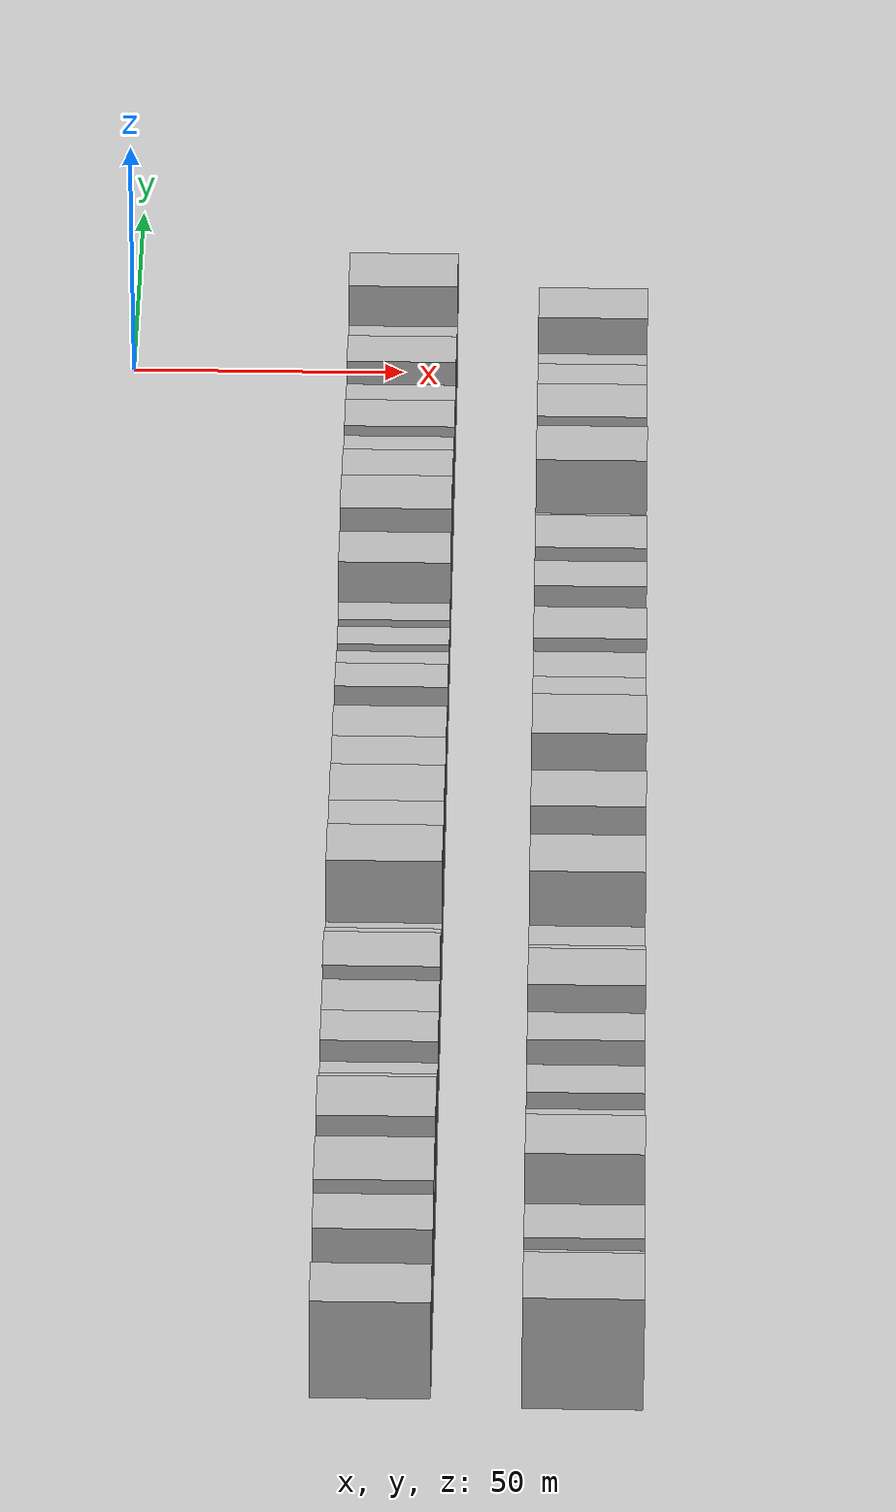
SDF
<sdf version="1.6">
 <world name="default">
  <model name="building_1">
   <static>1</static>
   <pose>50.0000 -283.1126 0 0.000000 0.000000 0.000000</pose>
   <link name="link">
    <pose>0 0 10.50 0 0 0</pose>
    <collision name="collision"><geometry><box><size>20.0000 9.7748 21.0000</size></box></geometry></collision>
    <visual name="visual">
     <cast_shadows>0</cast_shadows>
     <geometry><box><size>20.0000 9.7748 21.0000</size></box></geometry>
     <material>
      <script>
       <uri>model://HANNAS_wall/materials/scripts</uri>
       <uri>model://HANNAS_wall/materials/textures</uri>
       <name>vrc/HANNAS_wall</name>
      </script>
     </material>
    </visual>
   </link>
  </model>
  <model name="building_2">
   <static>1</static>
   <pose>50.0000 -274.9102 0 0.000000 0.000000 0.000000</pose>
   <link name="link">
    <pose>0 0 7.50 0 0 0</pose>
    <collision name="collision"><geometry><box><size>20.0000 6.6300 15.0000</size></box></geometry></collision>
    <visual name="visual">
     <cast_shadows>0</cast_shadows>
     <geometry><box><size>20.0000 6.6300 15.0000</size></box></geometry>
     <material>
      <script>
       <uri>model://HANNAS_wall/materials/scripts</uri>
       <uri>model://HANNAS_wall/materials/textures</uri>
       <name>vrc/HANNAS_wall</name>
      </script>
     </material>
    </visual>
   </link>
  </model>
  <model name="building_3">
   <static>1</static>
   <pose>50.0000 -265.1083 0 0.000000 0.000000 0.000000</pose>
   <link name="link">
    <pose>0 0 10.50 0 0 0</pose>
    <collision name="collision"><geometry><box><size>20.0000 8.9737 21.0000</size></box></geometry></collision>
    <visual name="visual">
     <cast_shadows>0</cast_shadows>
     <geometry><box><size>20.0000 8.9737 21.0000</size></box></geometry>
     <material>
      <script>
       <uri>model://HANNAS_wall/materials/scripts</uri>
       <uri>model://HANNAS_wall/materials/textures</uri>
       <name>vrc/HANNAS_wall</name>
      </script>
     </material>
    </visual>
   </link>
  </model>
  <model name="building_4">
   <static>1</static>
   <pose>50.0000 -254.9887 0 0.000000 0.000000 0.000000</pose>
   <link name="link">
    <pose>0 0 12.00 0 0 0</pose>
    <collision name="collision"><geometry><box><size>20.0000 11.2656 24.0000</size></box></geometry></collision>
    <visual name="visual">
     <cast_shadows>0</cast_shadows>
     <geometry><box><size>20.0000 11.2656 24.0000</size></box></geometry>
     <material>
      <script>
       <uri>model://HANNAS_wall/materials/scripts</uri>
       <uri>model://HANNAS_wall/materials/textures</uri>
       <name>vrc/HANNAS_wall</name>
      </script>
     </material>
    </visual>
   </link>
  </model>
  <model name="building_5">
   <static>1</static>
   <pose>50.0000 -246.7155 0 0.000000 0.000000 0.000000</pose>
   <link name="link">
    <pose>0 0 6.00 0 0 0</pose>
    <collision name="collision"><geometry><box><size>20.0000 5.2808 12.0000</size></box></geometry></collision>
    <visual name="visual">
     <cast_shadows>0</cast_shadows>
     <geometry><box><size>20.0000 5.2808 12.0000</size></box></geometry>
     <material>
      <script>
       <uri>model://HANNAS_wall/materials/scripts</uri>
       <uri>model://HANNAS_wall/materials/textures</uri>
       <name>vrc/HANNAS_wall</name>
      </script>
     </material>
    </visual>
   </link>
  </model>
  <model name="building_6">
   <static>1</static>
   <pose>50.0000 -238.8820 0 0.000000 0.000000 0.000000</pose>
   <link name="link">
    <pose>0 0 12.00 0 0 0</pose>
    <collision name="collision"><geometry><box><size>20.0000 10.3863 24.0000</size></box></geometry></collision>
    <visual name="visual">
     <cast_shadows>0</cast_shadows>
     <geometry><box><size>20.0000 10.3863 24.0000</size></box></geometry>
     <material>
      <script>
       <uri>model://HANNAS_wall/materials/scripts</uri>
       <uri>model://HANNAS_wall/materials/textures</uri>
       <name>vrc/HANNAS_wall</name>
      </script>
     </material>
    </visual>
   </link>
  </model>
  <model name="building_7">
   <static>1</static>
   <pose>50.0000 -229.6808 0 0.000000 0.000000 0.000000</pose>
   <link name="link">
    <pose>0 0 9.00 0 0 0</pose>
    <collision name="collision"><geometry><box><size>20.0000 8.0159 18.0000</size></box></geometry></collision>
    <visual name="visual">
     <cast_shadows>0</cast_shadows>
     <geometry><box><size>20.0000 8.0159 18.0000</size></box></geometry>
     <material>
      <script>
       <uri>model://HANNAS_wall/materials/scripts</uri>
       <uri>model://HANNAS_wall/materials/textures</uri>
       <name>vrc/HANNAS_wall</name>
      </script>
     </material>
    </visual>
   </link>
  </model>
  <model name="building_8">
   <static>1</static>
   <pose>50.0000 -222.3984 0 0.000000 0.000000 0.000000</pose>
   <link name="link">
    <pose>0 0 7.50 0 0 0</pose>
    <collision name="collision"><geometry><box><size>20.0000 6.5489 15.0000</size></box></geometry></collision>
    <visual name="visual">
     <cast_shadows>0</cast_shadows>
     <geometry><box><size>20.0000 6.5489 15.0000</size></box></geometry>
     <material>
      <script>
       <uri>model://HANNAS_wall/materials/scripts</uri>
       <uri>model://HANNAS_wall/materials/textures</uri>
       <name>vrc/HANNAS_wall</name>
      </script>
     </material>
    </visual>
   </link>
  </model>
  <model name="building_9">
   <static>1</static>
   <pose>50.0000 -213.1041 0 0.000000 0.000000 0.000000</pose>
   <link name="link">
    <pose>0 0 9.00 0 0 0</pose>
    <collision name="collision"><geometry><box><size>20.0000 8.0398 18.0000</size></box></geometry></collision>
    <visual name="visual">
     <cast_shadows>0</cast_shadows>
     <geometry><box><size>20.0000 8.0398 18.0000</size></box></geometry>
     <material>
      <script>
       <uri>model://HANNAS_wall/materials/scripts</uri>
       <uri>model://HANNAS_wall/materials/textures</uri>
       <name>vrc/HANNAS_wall</name>
      </script>
     </material>
    </visual>
   </link>
  </model>
  <model name="building_10">
   <static>1</static>
   <pose>50.0000 -204.9203 0 0.000000 0.000000 0.000000</pose>
   <link name="link">
    <pose>0 0 9.00 0 0 0</pose>
    <collision name="collision"><geometry><box><size>20.0000 8.3279 18.0000</size></box></geometry></collision>
    <visual name="visual">
     <cast_shadows>0</cast_shadows>
     <geometry><box><size>20.0000 8.3279 18.0000</size></box></geometry>
     <material>
      <script>
       <uri>model://HANNAS_wall/materials/scripts</uri>
       <uri>model://HANNAS_wall/materials/textures</uri>
       <name>vrc/HANNAS_wall</name>
      </script>
     </material>
    </visual>
   </link>
  </model>
  <model name="building_11">
   <static>1</static>
   <pose>50.0000 -196.1393 0 0.000000 0.000000 0.000000</pose>
   <link name="link">
    <pose>0 0 10.50 0 0 0</pose>
    <collision name="collision"><geometry><box><size>20.0000 9.2340 21.0000</size></box></geometry></collision>
    <visual name="visual">
     <cast_shadows>0</cast_shadows>
     <geometry><box><size>20.0000 9.2340 21.0000</size></box></geometry>
     <material>
      <script>
       <uri>model://HANNAS_wall/materials/scripts</uri>
       <uri>model://HANNAS_wall/materials/textures</uri>
       <name>vrc/HANNAS_wall</name>
      </script>
     </material>
    </visual>
   </link>
  </model>
  <model name="building_12">
   <static>1</static>
   <pose>50.0000 -186.2791 0 0.000000 0.000000 0.000000</pose>
   <link name="link">
    <pose>0 0 7.50 0 0 0</pose>
    <collision name="collision"><geometry><box><size>20.0000 6.4864 15.0000</size></box></geometry></collision>
    <visual name="visual">
     <cast_shadows>0</cast_shadows>
     <geometry><box><size>20.0000 6.4864 15.0000</size></box></geometry>
     <material>
      <script>
       <uri>model://HANNAS_wall/materials/scripts</uri>
       <uri>model://HANNAS_wall/materials/textures</uri>
       <name>vrc/HANNAS_wall</name>
      </script>
     </material>
    </visual>
   </link>
  </model>
  <model name="building_13">
   <static>1</static>
   <pose>50.0000 -180.4282 0 0.000000 0.000000 0.000000</pose>
   <link name="link">
    <pose>0 0 6.00 0 0 0</pose>
    <collision name="collision"><geometry><box><size>20.0000 5.2154 12.0000</size></box></geometry></collision>
    <visual name="visual">
     <cast_shadows>0</cast_shadows>
     <geometry><box><size>20.0000 5.2154 12.0000</size></box></geometry>
     <material>
      <script>
       <uri>model://HANNAS_wall/materials/scripts</uri>
       <uri>model://HANNAS_wall/materials/textures</uri>
       <name>vrc/HANNAS_wall</name>
      </script>
     </material>
    </visual>
   </link>
  </model>
  <model name="building_14">
   <static>1</static>
   <pose>50.0000 -170.7632 0 0.000000 0.000000 0.000000</pose>
   <link name="link">
    <pose>0 0 12.00 0 0 0</pose>
    <collision name="collision"><geometry><box><size>20.0000 10.1147 24.0000</size></box></geometry></collision>
    <visual name="visual">
     <cast_shadows>0</cast_shadows>
     <geometry><box><size>20.0000 10.1147 24.0000</size></box></geometry>
     <material>
      <script>
       <uri>model://HANNAS_wall/materials/scripts</uri>
       <uri>model://HANNAS_wall/materials/textures</uri>
       <name>vrc/HANNAS_wall</name>
      </script>
     </material>
    </visual>
   </link>
  </model>
  <model name="building_15">
   <static>1</static>
   <pose>50.0000 -160.4710 0 0.000000 0.000000 0.000000</pose>
   <link name="link">
    <pose>0 0 10.50 0 0 0</pose>
    <collision name="collision"><geometry><box><size>20.0000 10.4697 21.0000</size></box></geometry></collision>
    <visual name="visual">
     <cast_shadows>0</cast_shadows>
     <geometry><box><size>20.0000 10.4697 21.0000</size></box></geometry>
     <material>
      <script>
       <uri>model://HANNAS_wall/materials/scripts</uri>
       <uri>model://HANNAS_wall/materials/textures</uri>
       <name>vrc/HANNAS_wall</name>
      </script>
     </material>
    </visual>
   </link>
  </model>
  <model name="building_16">
   <static>1</static>
   <pose>50.0000 -150.1489 0 0.000000 0.000000 0.000000</pose>
   <link name="link">
    <pose>0 0 10.50 0 0 0</pose>
    <collision name="collision"><geometry><box><size>20.0000 10.1744 21.0000</size></box></geometry></collision>
    <visual name="visual">
     <cast_shadows>0</cast_shadows>
     <geometry><box><size>20.0000 10.1744 21.0000</size></box></geometry>
     <material>
      <script>
       <uri>model://HANNAS_wall/materials/scripts</uri>
       <uri>model://HANNAS_wall/materials/textures</uri>
       <name>vrc/HANNAS_wall</name>
      </script>
     </material>
    </visual>
   </link>
  </model>
  <model name="building_17">
   <static>1</static>
   <pose>50.0000 -137.6509 0 0.000000 0.000000 0.000000</pose>
   <link name="link">
    <pose>0 0 9.00 0 0 0</pose>
    <collision name="collision"><geometry><box><size>20.0000 8.8214 18.0000</size></box></geometry></collision>
    <visual name="visual">
     <cast_shadows>0</cast_shadows>
     <geometry><box><size>20.0000 8.8214 18.0000</size></box></geometry>
     <material>
      <script>
       <uri>model://HANNAS_wall/materials/scripts</uri>
       <uri>model://HANNAS_wall/materials/textures</uri>
       <name>vrc/HANNAS_wall</name>
      </script>
     </material>
    </visual>
   </link>
  </model>
  <model name="building_18">
   <static>1</static>
   <pose>50.0000 -128.8760 0 0.000000 0.000000 0.000000</pose>
   <link name="link">
    <pose>0 0 9.00 0 0 0</pose>
    <collision name="collision"><geometry><box><size>20.0000 8.7284 18.0000</size></box></geometry></collision>
    <visual name="visual">
     <cast_shadows>0</cast_shadows>
     <geometry><box><size>20.0000 8.7284 18.0000</size></box></geometry>
     <material>
      <script>
       <uri>model://HANNAS_wall/materials/scripts</uri>
       <uri>model://HANNAS_wall/materials/textures</uri>
       <name>vrc/HANNAS_wall</name>
      </script>
     </material>
    </visual>
   </link>
  </model>
  <model name="building_19">
   <static>1</static>
   <pose>50.0000 -119.8155 0 0.000000 0.000000 0.000000</pose>
   <link name="link">
    <pose>0 0 6.00 0 0 0</pose>
    <collision name="collision"><geometry><box><size>20.0000 5.3927 12.0000</size></box></geometry></collision>
    <visual name="visual">
     <cast_shadows>0</cast_shadows>
     <geometry><box><size>20.0000 5.3927 12.0000</size></box></geometry>
     <material>
      <script>
       <uri>model://HANNAS_wall/materials/scripts</uri>
       <uri>model://HANNAS_wall/materials/textures</uri>
       <name>vrc/HANNAS_wall</name>
      </script>
     </material>
    </visual>
   </link>
  </model>
  <model name="building_20">
   <static>1</static>
   <pose>50.0000 -111.7386 0 0.000000 0.000000 0.000000</pose>
   <link name="link">
    <pose>0 0 7.50 0 0 0</pose>
    <collision name="collision"><geometry><box><size>20.0000 6.7611 15.0000</size></box></geometry></collision>
    <visual name="visual">
     <cast_shadows>0</cast_shadows>
     <geometry><box><size>20.0000 6.7611 15.0000</size></box></geometry>
     <material>
      <script>
       <uri>model://HANNAS_wall/materials/scripts</uri>
       <uri>model://HANNAS_wall/materials/textures</uri>
       <name>vrc/HANNAS_wall</name>
      </script>
     </material>
    </visual>
   </link>
  </model>
  <model name="building_21">
   <static>1</static>
   <pose>50.0000 -103.6597 0 0.000000 0.000000 0.000000</pose>
   <link name="link">
    <pose>0 0 6.00 0 0 0</pose>
    <collision name="collision"><geometry><box><size>20.0000 5.3967 12.0000</size></box></geometry></collision>
    <visual name="visual">
     <cast_shadows>0</cast_shadows>
     <geometry><box><size>20.0000 5.3967 12.0000</size></box></geometry>
     <material>
      <script>
       <uri>model://HANNAS_wall/materials/scripts</uri>
       <uri>model://HANNAS_wall/materials/textures</uri>
       <name>vrc/HANNAS_wall</name>
      </script>
     </material>
    </visual>
   </link>
  </model>
  <model name="building_22">
   <static>1</static>
   <pose>50.0000 -96.3648 0 0.000000 0.000000 0.000000</pose>
   <link name="link">
    <pose>0 0 6.00 0 0 0</pose>
    <collision name="collision"><geometry><box><size>20.0000 5.1931 12.0000</size></box></geometry></collision>
    <visual name="visual">
     <cast_shadows>0</cast_shadows>
     <geometry><box><size>20.0000 5.1931 12.0000</size></box></geometry>
     <material>
      <script>
       <uri>model://HANNAS_wall/materials/scripts</uri>
       <uri>model://HANNAS_wall/materials/textures</uri>
       <name>vrc/HANNAS_wall</name>
      </script>
     </material>
    </visual>
   </link>
  </model>
  <model name="building_23">
   <static>1</static>
   <pose>50.0000 -89.1910 0 0.000000 0.000000 0.000000</pose>
   <link name="link">
    <pose>0 0 6.00 0 0 0</pose>
    <collision name="collision"><geometry><box><size>20.0000 5.1546 12.0000</size></box></geometry></collision>
    <visual name="visual">
     <cast_shadows>0</cast_shadows>
     <geometry><box><size>20.0000 5.1546 12.0000</size></box></geometry>
     <material>
      <script>
       <uri>model://HANNAS_wall/materials/scripts</uri>
       <uri>model://HANNAS_wall/materials/textures</uri>
       <name>vrc/HANNAS_wall</name>
      </script>
     </material>
    </visual>
   </link>
  </model>
  <model name="building_24">
   <static>1</static>
   <pose>50.0000 -82.0602 0 0.000000 0.000000 0.000000</pose>
   <link name="link">
    <pose>0 0 10.50 0 0 0</pose>
    <collision name="collision"><geometry><box><size>20.0000 9.1070 21.0000</size></box></geometry></collision>
    <visual name="visual">
     <cast_shadows>0</cast_shadows>
     <geometry><box><size>20.0000 9.1070 21.0000</size></box></geometry>
     <material>
      <script>
       <uri>model://HANNAS_wall/materials/scripts</uri>
       <uri>model://HANNAS_wall/materials/textures</uri>
       <name>vrc/HANNAS_wall</name>
      </script>
     </material>
    </visual>
   </link>
  </model>
  <model name="building_25">
   <static>1</static>
   <pose>50.0000 -69.5105 0 0.000000 0.000000 0.000000</pose>
   <link name="link">
    <pose>0 0 12.00 0 0 0</pose>
    <collision name="collision"><geometry><box><size>20.0000 9.9925 24.0000</size></box></geometry></collision>
    <visual name="visual">
     <cast_shadows>0</cast_shadows>
     <geometry><box><size>20.0000 9.9925 24.0000</size></box></geometry>
     <material>
      <script>
       <uri>model://HANNAS_wall/materials/scripts</uri>
       <uri>model://HANNAS_wall/materials/textures</uri>
       <name>vrc/HANNAS_wall</name>
      </script>
     </material>
    </visual>
   </link>
  </model>
  <model name="building_26">
   <static>1</static>
   <pose>50.0000 -57.0944 0 0.000000 0.000000 0.000000</pose>
   <link name="link">
    <pose>0 0 10.50 0 0 0</pose>
    <collision name="collision"><geometry><box><size>20.0000 8.8398 21.0000</size></box></geometry></collision>
    <visual name="visual">
     <cast_shadows>0</cast_shadows>
     <geometry><box><size>20.0000 8.8398 21.0000</size></box></geometry>
     <material>
      <script>
       <uri>model://HANNAS_wall/materials/scripts</uri>
       <uri>model://HANNAS_wall/materials/textures</uri>
       <name>vrc/HANNAS_wall</name>
      </script>
     </material>
    </visual>
   </link>
  </model>
  <model name="building_27">
   <static>1</static>
   <pose>50.0000 -48.5815 0 0.000000 0.000000 0.000000</pose>
   <link name="link">
    <pose>0 0 9.00 0 0 0</pose>
    <collision name="collision"><geometry><box><size>20.0000 8.1859 18.0000</size></box></geometry></collision>
    <visual name="visual">
     <cast_shadows>0</cast_shadows>
     <geometry><box><size>20.0000 8.1859 18.0000</size></box></geometry>
     <material>
      <script>
       <uri>model://HANNAS_wall/materials/scripts</uri>
       <uri>model://HANNAS_wall/materials/textures</uri>
       <name>vrc/HANNAS_wall</name>
      </script>
     </material>
    </visual>
   </link>
  </model>
  <model name="building_28">
   <static>1</static>
   <pose>50.0000 -37.4113 0 0.000000 0.000000 0.000000</pose>
   <link name="link">
    <pose>0 0 9.00 0 0 0</pose>
    <collision name="collision"><geometry><box><size>20.0000 8.1546 18.0000</size></box></geometry></collision>
    <visual name="visual">
     <cast_shadows>0</cast_shadows>
     <geometry><box><size>20.0000 8.1546 18.0000</size></box></geometry>
     <material>
      <script>
       <uri>model://HANNAS_wall/materials/scripts</uri>
       <uri>model://HANNAS_wall/materials/textures</uri>
       <name>vrc/HANNAS_wall</name>
      </script>
     </material>
    </visual>
   </link>
  </model>
  <model name="building_29">
   <static>1</static>
   <pose>50.0000 -27.9092 0 0.000000 0.000000 0.000000</pose>
   <link name="link">
    <pose>0 0 7.50 0 0 0</pose>
    <collision name="collision"><geometry><box><size>20.0000 6.8497 15.0000</size></box></geometry></collision>
    <visual name="visual">
     <cast_shadows>0</cast_shadows>
     <geometry><box><size>20.0000 6.8497 15.0000</size></box></geometry>
     <material>
      <script>
       <uri>model://HANNAS_wall/materials/scripts</uri>
       <uri>model://HANNAS_wall/materials/textures</uri>
       <name>vrc/HANNAS_wall</name>
      </script>
     </material>
    </visual>
   </link>
  </model>
  <model name="building_30">
   <static>1</static>
   <pose>50.0000 -17.4565 0 0.000000 0.000000 0.000000</pose>
   <link name="link">
    <pose>0 0 9.00 0 0 0</pose>
    <collision name="collision"><geometry><box><size>20.0000 8.0557 18.0000</size></box></geometry></collision>
    <visual name="visual">
     <cast_shadows>0</cast_shadows>
     <geometry><box><size>20.0000 8.0557 18.0000</size></box></geometry>
     <material>
      <script>
       <uri>model://HANNAS_wall/materials/scripts</uri>
       <uri>model://HANNAS_wall/materials/textures</uri>
       <name>vrc/HANNAS_wall</name>
      </script>
     </material>
    </visual>
   </link>
  </model>
  <model name="building_31">
   <static>1</static>
   <pose>50.0000 -9.7898 0 0.000000 0.000000 0.000000</pose>
   <link name="link">
    <pose>0 0 7.50 0 0 0</pose>
    <collision name="collision"><geometry><box><size>20.0000 7.2776 15.0000</size></box></geometry></collision>
    <visual name="visual">
     <cast_shadows>0</cast_shadows>
     <geometry><box><size>20.0000 7.2776 15.0000</size></box></geometry>
     <material>
      <script>
       <uri>model://HANNAS_wall/materials/scripts</uri>
       <uri>model://HANNAS_wall/materials/textures</uri>
       <name>vrc/HANNAS_wall</name>
      </script>
     </material>
    </visual>
   </link>
  </model>
  <model name="building_32">
   <static>1</static>
   <pose>50.0000 -0.8902 0 0.000000 0.000000 0.000000</pose>
   <link name="link">
    <pose>0 0 12.00 0 0 0</pose>
    <collision name="collision"><geometry><box><size>20.0000 10.5216 24.0000</size></box></geometry></collision>
    <visual name="visual">
     <cast_shadows>0</cast_shadows>
     <geometry><box><size>20.0000 10.5216 24.0000</size></box></geometry>
     <material>
      <script>
       <uri>model://HANNAS_wall/materials/scripts</uri>
       <uri>model://HANNAS_wall/materials/textures</uri>
       <name>vrc/HANNAS_wall</name>
      </script>
     </material>
    </visual>
   </link>
  </model>
  <model name="building_64">
   <static>1</static>
   <pose>85.0000 -284.1692 0 0.000000 0.000000 0.000000</pose>
   <link name="link">
    <pose>0 0 12.00 0 0 0</pose>
    <collision name="collision"><geometry><box><size>20.0000 11.6616 24.0000</size></box></geometry></collision>
    <visual name="visual">
     <cast_shadows>0</cast_shadows>
     <geometry><box><size>20.0000 11.6616 24.0000</size></box></geometry>
     <material>
      <script>
       <uri>model://HANNAS_wall/materials/scripts</uri>
       <uri>model://HANNAS_wall/materials/textures</uri>
       <name>vrc/HANNAS_wall</name>
      </script>
     </material>
    </visual>
   </link>
  </model>
  <model name="building_65">
   <static>1</static>
   <pose>85.0000 -274.5443 0 0.000000 0.000000 0.000000</pose>
   <link name="link">
    <pose>0 0 9.00 0 0 0</pose>
    <collision name="collision"><geometry><box><size>20.0000 7.5880 18.0000</size></box></geometry></collision>
    <visual name="visual">
     <cast_shadows>0</cast_shadows>
     <geometry><box><size>20.0000 7.5880 18.0000</size></box></geometry>
     <material>
      <script>
       <uri>model://HANNAS_wall/materials/scripts</uri>
       <uri>model://HANNAS_wall/materials/textures</uri>
       <name>vrc/HANNAS_wall</name>
      </script>
     </material>
    </visual>
   </link>
  </model>
  <model name="building_66">
   <static>1</static>
   <pose>85.0000 -263.4177 0 0.000000 0.000000 0.000000</pose>
   <link name="link">
    <pose>0 0 9.00 0 0 0</pose>
    <collision name="collision"><geometry><box><size>20.0000 8.6652 18.0000</size></box></geometry></collision>
    <visual name="visual">
     <cast_shadows>0</cast_shadows>
     <geometry><box><size>20.0000 8.6652 18.0000</size></box></geometry>
     <material>
      <script>
       <uri>model://HANNAS_wall/materials/scripts</uri>
       <uri>model://HANNAS_wall/materials/textures</uri>
       <name>vrc/HANNAS_wall</name>
      </script>
     </material>
    </visual>
   </link>
  </model>
  <model name="building_67">
   <static>1</static>
   <pose>85.0000 -256.1763 0 0.000000 0.000000 0.000000</pose>
   <link name="link">
    <pose>0 0 6.00 0 0 0</pose>
    <collision name="collision"><geometry><box><size>20.0000 5.8178 12.0000</size></box></geometry></collision>
    <visual name="visual">
     <cast_shadows>0</cast_shadows>
     <geometry><box><size>20.0000 5.8178 12.0000</size></box></geometry>
     <material>
      <script>
       <uri>model://HANNAS_wall/materials/scripts</uri>
       <uri>model://HANNAS_wall/materials/textures</uri>
       <name>vrc/HANNAS_wall</name>
      </script>
     </material>
    </visual>
   </link>
  </model>
  <model name="building_68">
   <static>1</static>
   <pose>85.0000 -248.1653 0 0.000000 0.000000 0.000000</pose>
   <link name="link">
    <pose>0 0 12.00 0 0 0</pose>
    <collision name="collision"><geometry><box><size>20.0000 10.2042 24.0000</size></box></geometry></collision>
    <visual name="visual">
     <cast_shadows>0</cast_shadows>
     <geometry><box><size>20.0000 10.2042 24.0000</size></box></geometry>
     <material>
      <script>
       <uri>model://HANNAS_wall/materials/scripts</uri>
       <uri>model://HANNAS_wall/materials/textures</uri>
       <name>vrc/HANNAS_wall</name>
      </script>
     </material>
    </visual>
   </link>
  </model>
  <model name="building_69">
   <static>1</static>
   <pose>85.0000 -238.7652 0 0.000000 0.000000 0.000000</pose>
   <link name="link">
    <pose>0 0 9.00 0 0 0</pose>
    <collision name="collision"><geometry><box><size>20.0000 8.5960 18.0000</size></box></geometry></collision>
    <visual name="visual">
     <cast_shadows>0</cast_shadows>
     <geometry><box><size>20.0000 8.5960 18.0000</size></box></geometry>
     <material>
      <script>
       <uri>model://HANNAS_wall/materials/scripts</uri>
       <uri>model://HANNAS_wall/materials/textures</uri>
       <name>vrc/HANNAS_wall</name>
      </script>
     </material>
    </visual>
   </link>
  </model>
  <model name="building_70">
   <static>1</static>
   <pose>85.0000 -232.0190 0 0.000000 0.000000 0.000000</pose>
   <link name="link">
    <pose>0 0 6.00 0 0 0</pose>
    <collision name="collision"><geometry><box><size>20.0000 4.8965 12.0000</size></box></geometry></collision>
    <visual name="visual">
     <cast_shadows>0</cast_shadows>
     <geometry><box><size>20.0000 4.8965 12.0000</size></box></geometry>
     <material>
      <script>
       <uri>model://HANNAS_wall/materials/scripts</uri>
       <uri>model://HANNAS_wall/materials/textures</uri>
       <name>vrc/HANNAS_wall</name>
      </script>
     </material>
    </visual>
   </link>
  </model>
  <model name="building_71">
   <static>1</static>
   <pose>85.0000 -222.8958 0 0.000000 0.000000 0.000000</pose>
   <link name="link">
    <pose>0 0 7.50 0 0 0</pose>
    <collision name="collision"><geometry><box><size>20.0000 7.3498 15.0000</size></box></geometry></collision>
    <visual name="visual">
     <cast_shadows>0</cast_shadows>
     <geometry><box><size>20.0000 7.3498 15.0000</size></box></geometry>
     <material>
      <script>
       <uri>model://HANNAS_wall/materials/scripts</uri>
       <uri>model://HANNAS_wall/materials/textures</uri>
       <name>vrc/HANNAS_wall</name>
      </script>
     </material>
    </visual>
   </link>
  </model>
  <model name="building_72">
   <static>1</static>
   <pose>85.0000 -212.5471 0 0.000000 0.000000 0.000000</pose>
   <link name="link">
    <pose>0 0 9.00 0 0 0</pose>
    <collision name="collision"><geometry><box><size>20.0000 7.3475 18.0000</size></box></geometry></collision>
    <visual name="visual">
     <cast_shadows>0</cast_shadows>
     <geometry><box><size>20.0000 7.3475 18.0000</size></box></geometry>
     <material>
      <script>
       <uri>model://HANNAS_wall/materials/scripts</uri>
       <uri>model://HANNAS_wall/materials/textures</uri>
       <name>vrc/HANNAS_wall</name>
      </script>
     </material>
    </visual>
   </link>
  </model>
  <model name="building_73">
   <static>1</static>
   <pose>85.0000 -203.9569 0 0.000000 0.000000 0.000000</pose>
   <link name="link">
    <pose>0 0 12.00 0 0 0</pose>
    <collision name="collision"><geometry><box><size>20.0000 9.8329 24.0000</size></box></geometry></collision>
    <visual name="visual">
     <cast_shadows>0</cast_shadows>
     <geometry><box><size>20.0000 9.8329 24.0000</size></box></geometry>
     <material>
      <script>
       <uri>model://HANNAS_wall/materials/scripts</uri>
       <uri>model://HANNAS_wall/materials/textures</uri>
       <name>vrc/HANNAS_wall</name>
      </script>
     </material>
    </visual>
   </link>
  </model>
  <model name="building_74">
   <static>1</static>
   <pose>85.0000 -194.9066 0 0.000000 0.000000 0.000000</pose>
   <link name="link">
    <pose>0 0 9.00 0 0 0</pose>
    <collision name="collision"><geometry><box><size>20.0000 8.2678 18.0000</size></box></geometry></collision>
    <visual name="visual">
     <cast_shadows>0</cast_shadows>
     <geometry><box><size>20.0000 8.2678 18.0000</size></box></geometry>
     <material>
      <script>
       <uri>model://HANNAS_wall/materials/scripts</uri>
       <uri>model://HANNAS_wall/materials/textures</uri>
       <name>vrc/HANNAS_wall</name>
      </script>
     </material>
    </visual>
   </link>
  </model>
  <model name="building_75">
   <static>1</static>
   <pose>85.0000 -186.3260 0 0.000000 0.000000 0.000000</pose>
   <link name="link">
    <pose>0 0 6.00 0 0 0</pose>
    <collision name="collision"><geometry><box><size>20.0000 4.8934 12.0000</size></box></geometry></collision>
    <visual name="visual">
     <cast_shadows>0</cast_shadows>
     <geometry><box><size>20.0000 4.8934 12.0000</size></box></geometry>
     <material>
      <script>
       <uri>model://HANNAS_wall/materials/scripts</uri>
       <uri>model://HANNAS_wall/materials/textures</uri>
       <name>vrc/HANNAS_wall</name>
      </script>
     </material>
    </visual>
   </link>
  </model>
  <model name="building_76">
   <static>1</static>
   <pose>85.0000 -180.9855 0 0.000000 0.000000 0.000000</pose>
   <link name="link">
    <pose>0 0 6.00 0 0 0</pose>
    <collision name="collision"><geometry><box><size>20.0000 5.7876 12.0000</size></box></geometry></collision>
    <visual name="visual">
     <cast_shadows>0</cast_shadows>
     <geometry><box><size>20.0000 5.7876 12.0000</size></box></geometry>
     <material>
      <script>
       <uri>model://HANNAS_wall/materials/scripts</uri>
       <uri>model://HANNAS_wall/materials/textures</uri>
       <name>vrc/HANNAS_wall</name>
      </script>
     </material>
    </visual>
   </link>
  </model>
  <model name="building_77">
   <static>1</static>
   <pose>85.0000 -172.9560 0 0.000000 0.000000 0.000000</pose>
   <link name="link">
    <pose>0 0 12.00 0 0 0</pose>
    <collision name="collision"><geometry><box><size>20.0000 10.2713 24.0000</size></box></geometry></collision>
    <visual name="visual">
     <cast_shadows>0</cast_shadows>
     <geometry><box><size>20.0000 10.2713 24.0000</size></box></geometry>
     <material>
      <script>
       <uri>model://HANNAS_wall/materials/scripts</uri>
       <uri>model://HANNAS_wall/materials/textures</uri>
       <name>vrc/HANNAS_wall</name>
      </script>
     </material>
    </visual>
   </link>
  </model>
  <model name="building_78">
   <static>1</static>
   <pose>85.0000 -164.8981 0 0.000000 0.000000 0.000000</pose>
   <link name="link">
    <pose>0 0 6.00 0 0 0</pose>
    <collision name="collision"><geometry><box><size>20.0000 5.8446 12.0000</size></box></geometry></collision>
    <visual name="visual">
     <cast_shadows>0</cast_shadows>
     <geometry><box><size>20.0000 5.8446 12.0000</size></box></geometry>
     <material>
      <script>
       <uri>model://HANNAS_wall/materials/scripts</uri>
       <uri>model://HANNAS_wall/materials/textures</uri>
       <name>vrc/HANNAS_wall</name>
      </script>
     </material>
    </visual>
   </link>
  </model>
  <model name="building_79">
   <static>1</static>
   <pose>85.0000 -154.9452 0 0.000000 0.000000 0.000000</pose>
   <link name="link">
    <pose>0 0 12.00 0 0 0</pose>
    <collision name="collision"><geometry><box><size>20.0000 10.0612 24.0000</size></box></geometry></collision>
    <visual name="visual">
     <cast_shadows>0</cast_shadows>
     <geometry><box><size>20.0000 10.0612 24.0000</size></box></geometry>
     <material>
      <script>
       <uri>model://HANNAS_wall/materials/scripts</uri>
       <uri>model://HANNAS_wall/materials/textures</uri>
       <name>vrc/HANNAS_wall</name>
      </script>
     </material>
    </visual>
   </link>
  </model>
  <model name="building_80">
   <static>1</static>
   <pose>85.0000 -143.1787 0 0.000000 0.000000 0.000000</pose>
   <link name="link">
    <pose>0 0 7.50 0 0 0</pose>
    <collision name="collision"><geometry><box><size>20.0000 7.4720 15.0000</size></box></geometry></collision>
    <visual name="visual">
     <cast_shadows>0</cast_shadows>
     <geometry><box><size>20.0000 7.4720 15.0000</size></box></geometry>
     <material>
      <script>
       <uri>model://HANNAS_wall/materials/scripts</uri>
       <uri>model://HANNAS_wall/materials/textures</uri>
       <name>vrc/HANNAS_wall</name>
      </script>
     </material>
    </visual>
   </link>
  </model>
  <model name="building_81">
   <static>1</static>
   <pose>85.0000 -133.8678 0 0.000000 0.000000 0.000000</pose>
   <link name="link">
    <pose>0 0 12.00 0 0 0</pose>
    <collision name="collision"><geometry><box><size>20.0000 11.1498 24.0000</size></box></geometry></collision>
    <visual name="visual">
     <cast_shadows>0</cast_shadows>
     <geometry><box><size>20.0000 11.1498 24.0000</size></box></geometry>
     <material>
      <script>
       <uri>model://HANNAS_wall/materials/scripts</uri>
       <uri>model://HANNAS_wall/materials/textures</uri>
       <name>vrc/HANNAS_wall</name>
      </script>
     </material>
    </visual>
   </link>
  </model>
  <model name="building_82">
   <static>1</static>
   <pose>85.0000 -125.5841 0 0.000000 0.000000 0.000000</pose>
   <link name="link">
    <pose>0 0 6.00 0 0 0</pose>
    <collision name="collision"><geometry><box><size>20.0000 5.4175 12.0000</size></box></geometry></collision>
    <visual name="visual">
     <cast_shadows>0</cast_shadows>
     <geometry><box><size>20.0000 5.4175 12.0000</size></box></geometry>
     <material>
      <script>
       <uri>model://HANNAS_wall/materials/scripts</uri>
       <uri>model://HANNAS_wall/materials/textures</uri>
       <name>vrc/HANNAS_wall</name>
      </script>
     </material>
    </visual>
   </link>
  </model>
  <model name="building_83">
   <static>1</static>
   <pose>85.0000 -119.1828 0 0.000000 0.000000 0.000000</pose>
   <link name="link">
    <pose>0 0 9.00 0 0 0</pose>
    <collision name="collision"><geometry><box><size>20.0000 7.3850 18.0000</size></box></geometry></collision>
    <visual name="visual">
     <cast_shadows>0</cast_shadows>
     <geometry><box><size>20.0000 7.3850 18.0000</size></box></geometry>
     <material>
      <script>
       <uri>model://HANNAS_wall/materials/scripts</uri>
       <uri>model://HANNAS_wall/materials/textures</uri>
       <name>vrc/HANNAS_wall</name>
      </script>
     </material>
    </visual>
   </link>
  </model>
  <model name="building_84">
   <static>1</static>
   <pose>85.0000 -111.8487 0 0.000000 0.000000 0.000000</pose>
   <link name="link">
    <pose>0 0 9.00 0 0 0</pose>
    <collision name="collision"><geometry><box><size>20.0000 7.2832 18.0000</size></box></geometry></collision>
    <visual name="visual">
     <cast_shadows>0</cast_shadows>
     <geometry><box><size>20.0000 7.2832 18.0000</size></box></geometry>
     <material>
      <script>
       <uri>model://HANNAS_wall/materials/scripts</uri>
       <uri>model://HANNAS_wall/materials/textures</uri>
       <name>vrc/HANNAS_wall</name>
      </script>
     </material>
    </visual>
   </link>
  </model>
  <model name="building_85">
   <static>1</static>
   <pose>85.0000 -103.6294 0 0.000000 0.000000 0.000000</pose>
   <link name="link">
    <pose>0 0 10.50 0 0 0</pose>
    <collision name="collision"><geometry><box><size>20.0000 9.1555 21.0000</size></box></geometry></collision>
    <visual name="visual">
     <cast_shadows>0</cast_shadows>
     <geometry><box><size>20.0000 9.1555 21.0000</size></box></geometry>
     <material>
      <script>
       <uri>model://HANNAS_wall/materials/scripts</uri>
       <uri>model://HANNAS_wall/materials/textures</uri>
       <name>vrc/HANNAS_wall</name>
      </script>
     </material>
    </visual>
   </link>
  </model>
  <model name="building_86">
   <static>1</static>
   <pose>85.0000 -95.5231 0 0.000000 0.000000 0.000000</pose>
   <link name="link">
    <pose>0 0 7.50 0 0 0</pose>
    <collision name="collision"><geometry><box><size>20.0000 7.0570 15.0000</size></box></geometry></collision>
    <visual name="visual">
     <cast_shadows>0</cast_shadows>
     <geometry><box><size>20.0000 7.0570 15.0000</size></box></geometry>
     <material>
      <script>
       <uri>model://HANNAS_wall/materials/scripts</uri>
       <uri>model://HANNAS_wall/materials/textures</uri>
       <name>vrc/HANNAS_wall</name>
      </script>
     </material>
    </visual>
   </link>
  </model>
  <model name="building_87">
   <static>1</static>
   <pose>85.0000 -85.2627 0 0.000000 0.000000 0.000000</pose>
   <link name="link">
    <pose>0 0 9.00 0 0 0</pose>
    <collision name="collision"><geometry><box><size>20.0000 7.4637 18.0000</size></box></geometry></collision>
    <visual name="visual">
     <cast_shadows>0</cast_shadows>
     <geometry><box><size>20.0000 7.4637 18.0000</size></box></geometry>
     <material>
      <script>
       <uri>model://HANNAS_wall/materials/scripts</uri>
       <uri>model://HANNAS_wall/materials/textures</uri>
       <name>vrc/HANNAS_wall</name>
      </script>
     </material>
    </visual>
   </link>
  </model>
  <model name="building_88">
   <static>1</static>
   <pose>85.0000 -76.6900 0 0.000000 0.000000 0.000000</pose>
   <link name="link">
    <pose>0 0 10.50 0 0 0</pose>
    <collision name="collision"><geometry><box><size>20.0000 9.6817 21.0000</size></box></geometry></collision>
    <visual name="visual">
     <cast_shadows>0</cast_shadows>
     <geometry><box><size>20.0000 9.6817 21.0000</size></box></geometry>
     <material>
      <script>
       <uri>model://HANNAS_wall/materials/scripts</uri>
       <uri>model://HANNAS_wall/materials/textures</uri>
       <name>vrc/HANNAS_wall</name>
      </script>
     </material>
    </visual>
   </link>
  </model>
  <model name="building_89">
   <static>1</static>
   <pose>85.0000 -67.3450 0 0.000000 0.000000 0.000000</pose>
   <link name="link">
    <pose>0 0 6.00 0 0 0</pose>
    <collision name="collision"><geometry><box><size>20.0000 5.0084 12.0000</size></box></geometry></collision>
    <visual name="visual">
     <cast_shadows>0</cast_shadows>
     <geometry><box><size>20.0000 5.0084 12.0000</size></box></geometry>
     <material>
      <script>
       <uri>model://HANNAS_wall/materials/scripts</uri>
       <uri>model://HANNAS_wall/materials/textures</uri>
       <name>vrc/HANNAS_wall</name>
      </script>
     </material>
    </visual>
   </link>
  </model>
  <model name="building_90">
   <static>1</static>
   <pose>85.0000 -62.0799 0 0.000000 0.000000 0.000000</pose>
   <link name="link">
    <pose>0 0 6.00 0 0 0</pose>
    <collision name="collision"><geometry><box><size>20.0000 5.5217 12.0000</size></box></geometry></collision>
    <visual name="visual">
     <cast_shadows>0</cast_shadows>
     <geometry><box><size>20.0000 5.5217 12.0000</size></box></geometry>
     <material>
      <script>
       <uri>model://HANNAS_wall/materials/scripts</uri>
       <uri>model://HANNAS_wall/materials/textures</uri>
       <name>vrc/HANNAS_wall</name>
      </script>
     </material>
    </visual>
   </link>
  </model>
  <model name="building_91">
   <static>1</static>
   <pose>85.0000 -54.0821 0 0.000000 0.000000 0.000000</pose>
   <link name="link">
    <pose>0 0 12.00 0 0 0</pose>
    <collision name="collision"><geometry><box><size>20.0000 10.4739 24.0000</size></box></geometry></collision>
    <visual name="visual">
     <cast_shadows>0</cast_shadows>
     <geometry><box><size>20.0000 10.4739 24.0000</size></box></geometry>
     <material>
      <script>
       <uri>model://HANNAS_wall/materials/scripts</uri>
       <uri>model://HANNAS_wall/materials/textures</uri>
       <name>vrc/HANNAS_wall</name>
      </script>
     </material>
    </visual>
   </link>
  </model>
  <model name="building_92">
   <static>1</static>
   <pose>85.0000 -46.3935 0 0.000000 0.000000 0.000000</pose>
   <link name="link">
    <pose>0 0 6.00 0 0 0</pose>
    <collision name="collision"><geometry><box><size>20.0000 4.9033 12.0000</size></box></geometry></collision>
    <visual name="visual">
     <cast_shadows>0</cast_shadows>
     <geometry><box><size>20.0000 4.9033 12.0000</size></box></geometry>
     <material>
      <script>
       <uri>model://HANNAS_wall/materials/scripts</uri>
       <uri>model://HANNAS_wall/materials/textures</uri>
       <name>vrc/HANNAS_wall</name>
      </script>
     </material>
    </visual>
   </link>
  </model>
  <model name="building_93">
   <static>1</static>
   <pose>85.0000 -36.8664 0 0.000000 0.000000 0.000000</pose>
   <link name="link">
    <pose>0 0 10.50 0 0 0</pose>
    <collision name="collision"><geometry><box><size>20.0000 10.1509 21.0000</size></box></geometry></collision>
    <visual name="visual">
     <cast_shadows>0</cast_shadows>
     <geometry><box><size>20.0000 10.1509 21.0000</size></box></geometry>
     <material>
      <script>
       <uri>model://HANNAS_wall/materials/scripts</uri>
       <uri>model://HANNAS_wall/materials/textures</uri>
       <name>vrc/HANNAS_wall</name>
      </script>
     </material>
    </visual>
   </link>
  </model>
  <model name="building_94">
   <static>1</static>
   <pose>85.0000 -25.6707 0 0.000000 0.000000 0.000000</pose>
   <link name="link">
    <pose>0 0 9.00 0 0 0</pose>
    <collision name="collision"><geometry><box><size>20.0000 8.2406 18.0000</size></box></geometry></collision>
    <visual name="visual">
     <cast_shadows>0</cast_shadows>
     <geometry><box><size>20.0000 8.2406 18.0000</size></box></geometry>
     <material>
      <script>
       <uri>model://HANNAS_wall/materials/scripts</uri>
       <uri>model://HANNAS_wall/materials/textures</uri>
       <name>vrc/HANNAS_wall</name>
      </script>
     </material>
    </visual>
   </link>
  </model>
  <model name="building_95">
   <static>1</static>
   <pose>85.0000 -17.8987 0 0.000000 0.000000 0.000000</pose>
   <link name="link">
    <pose>0 0 7.50 0 0 0</pose>
    <collision name="collision"><geometry><box><size>20.0000 7.3033 15.0000</size></box></geometry></collision>
    <visual name="visual">
     <cast_shadows>0</cast_shadows>
     <geometry><box><size>20.0000 7.3033 15.0000</size></box></geometry>
     <material>
      <script>
       <uri>model://HANNAS_wall/materials/scripts</uri>
       <uri>model://HANNAS_wall/materials/textures</uri>
       <name>vrc/HANNAS_wall</name>
      </script>
     </material>
    </visual>
   </link>
  </model>
  <model name="building_96">
   <static>1</static>
   <pose>85.0000 -6.5135 0 0.000000 0.000000 0.000000</pose>
   <link name="link">
    <pose>0 0 10.50 0 0 0</pose>
    <collision name="collision"><geometry><box><size>20.0000 9.4672 21.0000</size></box></geometry></collision>
    <visual name="visual">
     <cast_shadows>0</cast_shadows>
     <geometry><box><size>20.0000 9.4672 21.0000</size></box></geometry>
     <material>
      <script>
       <uri>model://HANNAS_wall/materials/scripts</uri>
       <uri>model://HANNAS_wall/materials/textures</uri>
       <name>vrc/HANNAS_wall</name>
      </script>
     </material>
    </visual>
   </link>
  </model>
 </world>
</sdf>
